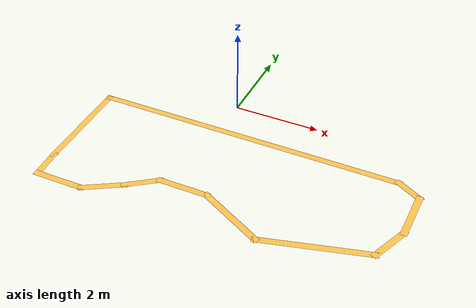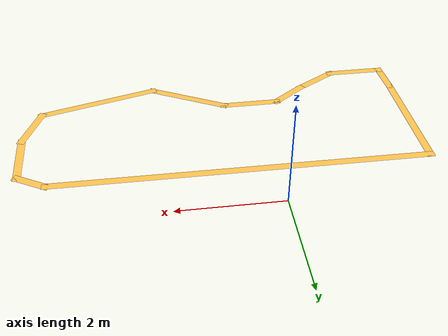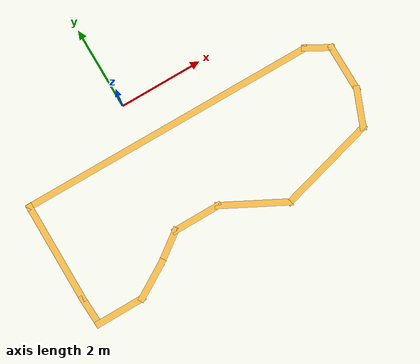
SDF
<?xml version='1.0'?>
<sdf version='1.7'>
  <model name='track0'>
    <pose>0.913375 -2.02144 0 0 -0 0</pose>
    <link name='Wall_0'>
      <collision name='Wall_0_Collision'>
        <geometry>
          <box>
            <size>2.50002 0.15 0.00</size>
          </box>
        </geometry>
        <pose>0 0 0.0005 0 -0 0</pose>
      </collision>
      <visual name='Wall_0_Visual'>
        <pose>0 0 0.0005 0 -0 0</pose>
        <geometry>
          <box>
            <size>2.50002 0.15 0.00</size>
          </box>
        </geometry>
        <material>
          <script>
            <uri>file://media/materials/scripts/gazebo.material</uri>
            <name>Gazebo/Grey</name>

          </script>
          <ambient>1 0.764706 0.305882 1</ambient>
        </material>
        <meta>
          <layer>0</layer>
        </meta>
      </visual>
      <pose>-3.83838 -0.083558 0 0 -0 1.57505</pose>
    </link>
    <link name='Wall_1'>
      <collision name='Wall_1_Collision'>
        <geometry>
          <box>
            <size>7.28001 0.15 0.00</size>
          </box>
        </geometry>
        <pose>0 0 0.0005 0 -0 0</pose>
      </collision>
      <visual name='Wall_1_Visual'>
        <pose>0 0 0.0005 0 -0 0</pose>
        <geometry>
          <box>
            <size>7.28001 0.15 0.00</size>
          </box>
        </geometry>
        <material>
          <script>
            <uri>file://media/materials/scripts/gazebo.material</uri>
            <name>Gazebo/Grey</name>
          </script>
          <ambient>1 0.764706 0.305882 1</ambient>
        </material>
        <meta>
          <layer>0</layer>
        </meta>
      </visual>
      <pose>-0.278375 1.08644 0 0 -0 -0.00403</pose>
    </link>
    <link name='Wall_10'>
      <collision name='Wall_10_Collision'>
        <geometry>
          <box>
            <size>1.25 0.15 0.00</size>
          </box>
        </geometry>
        <pose>0 0 0.0005 0 -0 0</pose>
      </collision>
      <visual name='Wall_10_Visual'>
        <pose>0 0 0.0005 0 -0 0</pose>
        <geometry>
          <box>
            <size>1.25 0.15 0.00</size>
          </box>
        </geometry>
        <material>
          <script>
            <uri>file://media/materials/scripts/gazebo.material</uri>
            <name>Gazebo/Grey</name>
          </script>
          <ambient>1 0.764706 0.305882 1</ambient>
        </material>
        <meta>
          <layer>0</layer>
        </meta>
      </visual>
      <pose>-3.25137 -1.91856 0 0 -0 3.14159</pose>
    </link>
    <link name='Wall_13'>
      <collision name='Wall_13_Collision'>
        <geometry>
          <box>
            <size>0.810775 0.15 0.00</size>
          </box>
        </geometry>
        <pose>0 0 0.0005 0 -0 0</pose>
      </collision>
      <visual name='Wall_13_Visual'>
        <pose>0 0 0.0005 0 -0 0</pose>
        <geometry>
          <box>
            <size>0.810775 0.15 0.00</size>
          </box>
        </geometry>
        <material>
          <script>
            <uri>file://media/materials/scripts/gazebo.material</uri>
            <name>Gazebo/Grey</name>
          </script>
          <ambient>1 0.764706 0.305882 1</ambient>
        </material>
        <meta>
          <layer>0</layer>
        </meta>
      </visual>
      <pose>-3.81738 -1.58856 0 0 -0 1.61924</pose>
    </link>
    <link name='Wall_2'>
      <collision name='Wall_2_Collision'>
        <geometry>
          <box>
            <size>0.758681 0.15 0.00</size>
          </box>
        </geometry>
        <pose>0 0 0.0005 0 -0 0</pose>
      </collision>
      <visual name='Wall_2_Visual'>
        <pose>0 0 0.0005 0 -0 0</pose>
        <geometry>
          <box>
            <size>0.758681 0.15 0.00</size>
          </box>
        </geometry>
        <material>
          <script>
            <uri>file://media/materials/scripts/gazebo.material</uri>
            <name>Gazebo/Grey</name>
          </script>
          <ambient>1 0.764706 0.305882 1</ambient>
        </material>
        <meta>
          <layer>0</layer>
        </meta>
      </visual>
      <pose>3.55163 0.931442 0 0 -0 -0.515073</pose>
    </link>
    <link name='Wall_3'>
      <collision name='Wall_3_Collision'>
        <geometry>
          <box>
            <size>1.25 0.15 0.00</size>
          </box>
        </geometry>
        <pose>0 0 0.0005 0 -0 0</pose>
      </collision>
      <visual name='Wall_3_Visual'>
        <pose>0 0 0.0005 0 -0 0</pose>
        <geometry>
          <box>
            <size>1.25 0.15 0.00</size>
          </box>
        </geometry>
        <material>
          <script>
            <uri>file://media/materials/scripts/gazebo.material</uri>
            <name>Gazebo/Grey</name>
          </script>
          <ambient>1 0.764706 0.305882 1</ambient>
        </material>
        <meta>
          <layer>0</layer>
        </meta>
      </visual>
      <pose>3.81663 0.231442 0 0 -0 -1.5708</pose>
    </link>
    <link name='Wall_4'>
      <collision name='Wall_4_Collision'>
        <geometry>
          <box>
            <size>1.03521 0.15 0.00</size>
          </box>
        </geometry>
        <pose>0 0 0.0005 0 -0 0</pose>
      </collision>
      <visual name='Wall_4_Visual'>
        <pose>0 0 0.0005 0 -0 0</pose>
        <geometry>
          <box>
            <size>1.03521 0.15 0.00</size>
          </box>
        </geometry>
        <material>
          <script>
            <uri>file://media/materials/scripts/gazebo.material</uri>
            <name>Gazebo/Grey</name>
          </script>
          <ambient>1 0.764706 0.305882 1</ambient>
        </material>
        <meta>
          <layer>0</layer>
        </meta>
      </visual>
      <pose>3.65112 -0.729058 0 0 -0 -1.95403</pose>
    </link>
    <link name='Wall_5'>
      <collision name='Wall_5_Collision'>
        <geometry>
          <box>
            <size>2.50001 0.15 0.00</size>
          </box>
        </geometry>
        <pose>0 0 0.0005 0 -0 0</pose>
      </collision>
      <visual name='Wall_5_Visual'>
        <pose>0 0 0.0005 0 -0 0</pose>
        <geometry>
          <box>
            <size>2.50001 0.15 0.00</size>
          </box>
        </geometry>
        <material>
          <script>
            <uri>file://media/materials/scripts/gazebo.material</uri>
            <name>Gazebo/Grey</name>
          </script>
          <ambient>1 0.764706 0.305882 1</ambient>
        </material>
        <meta>
          <layer>0</layer>
        </meta>
      </visual>
      <pose>2.35062 -1.44356 0 0 -0 -2.87989</pose>
    </link>
    <link name='Wall_6'>
      <collision name='Wall_6_Collision'>
        <geometry>
          <box>
            <size>1.76154 0.15 0.00</size>
          </box>
        </geometry>
        <pose>0 0 0.0005 0 -0 0</pose>
      </collision>
      <visual name='Wall_6_Visual'>
        <pose>0 0 0.0005 0 -0 0</pose>
        <geometry>
          <box>
            <size>1.76154 0.15 0.00</size>
          </box>
        </geometry>
        <material>
          <script>
            <uri>file://media/materials/scripts/gazebo.material</uri>
            <name>Gazebo/Grey</name>
          </script>
          <ambient>1 0.764706 0.305882 1</ambient>
        </material>
        <meta>
          <layer>0</layer>
        </meta>
      </visual>
      <pose>0.501125 -1.37506 0 0 -0 2.66102</pose>
    </link>
    <link name='Wall_7'>
      <collision name='Wall_7_Collision'>
        <geometry>
          <box>
            <size>1.25 0.15 0.00</size>
          </box>
        </geometry>
        <pose>0 0 0.0005 0 -0 0</pose>
      </collision>
      <visual name='Wall_7_Visual'>
        <pose>0 0 0.0005 0 -0 0</pose>
        <geometry>
          <box>
            <size>1.25 0.15 0.00</size>
          </box>
        </geometry>
        <material>
          <script>
            <uri>file://media/materials/scripts/gazebo.material</uri>
            <name>Gazebo/Grey</name>
          </script>
          <ambient>1 0.764706 0.305882 1</ambient>
        </material>
        <meta>
          <layer>0</layer>
        </meta>
      </visual>
      <pose>-0.763375 -1.00256 0 0 -0 3.14159</pose>
    </link>
    <link name='Wall_8'>
      <collision name='Wall_8_Collision'>
        <geometry>
          <box>
            <size>0.910227 0.15 0.00</size>
          </box>
        </geometry>
        <pose>0 0 0.0005 0 -0 0</pose>
      </collision>
      <visual name='Wall_8_Visual'>
        <pose>0 0 0.0005 0 -0 0</pose>
        <geometry>
          <box>
            <size>0.910227 0.15 0.00</size>
          </box>
        </geometry>
        <material>
          <script>
            <uri>file://media/materials/scripts/gazebo.material</uri>
            <name>Gazebo/Grey</name>
          </script>
          <ambient>1 0.764706 0.305882 1</ambient>
        </material>
        <meta>
          <layer>0</layer>
        </meta>
      </visual>
      <pose>-1.61938 -1.22806 0 0 -0 -2.50651</pose>
    </link>
    <link name='Wall_9'>
      <collision name='Wall_9_Collision'>
        <geometry>
          <box>
            <size>1.05465 0.15 0.00</size>
          </box>
        </geometry>
        <pose>0 0 0.0005 0 -0 0</pose>
      </collision>
      <visual name='Wall_9_Visual'>
        <pose>0 0 0.0005 0 -0 0</pose>
        <geometry>
          <box>
            <size>1.05465 0.15 0.00</size>
          </box>
        </geometry>
        <material>
          <script>
            <uri>file://media/materials/scripts/gazebo.material</uri>
            <name>Gazebo/Grey</name>
          </script>
          <ambient>1 0.764706 0.305882 1</ambient>
        </material>
        <meta>
          <layer>0</layer>
        </meta>
      </visual>
      <pose>-2.31338 -1.68606 0 0 -0 -2.60174</pose>
    </link>
    <static>1</static>
  </model>
</sdf>
